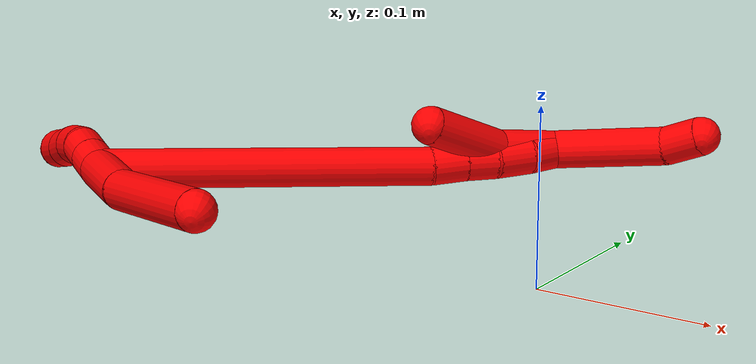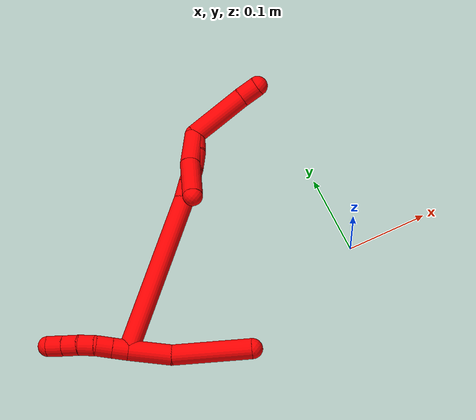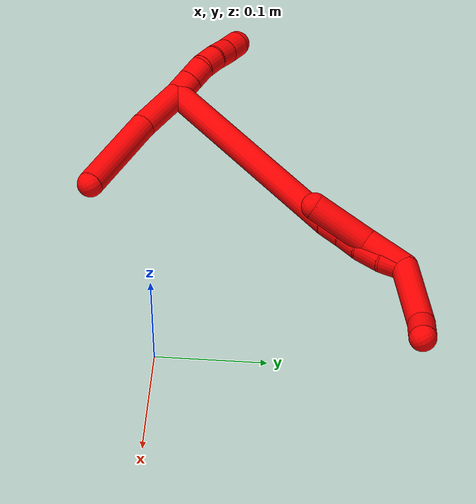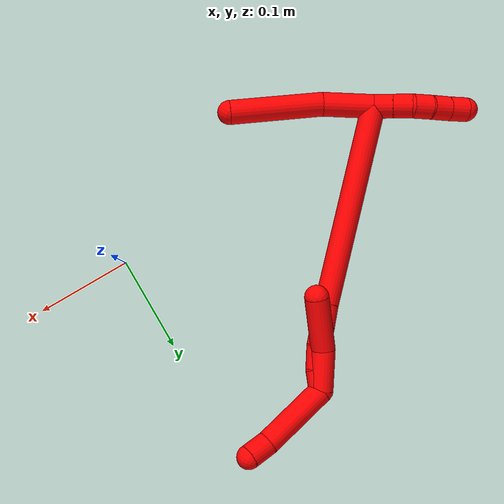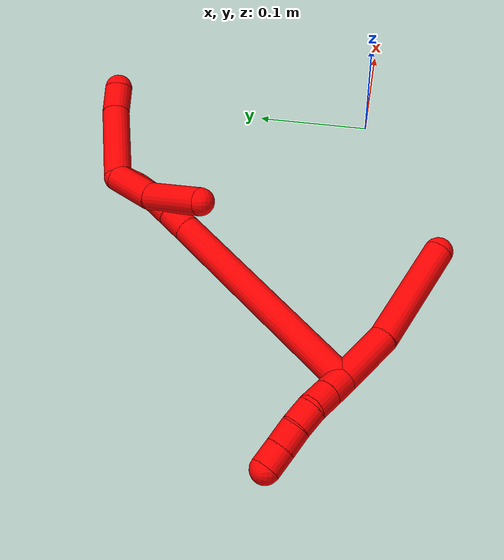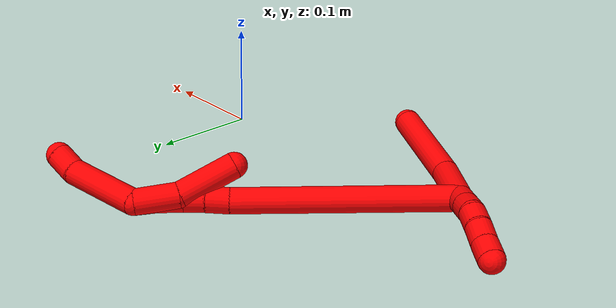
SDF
<sdf version="1.7">
 <world name="default">
  <model name="2">
   <static>0</static>
   <link name="2">
    <collision name="collision-cylinder-e_1_2_8">
     <pose>0.011661 0.008727 -0.022099 -2.7655 0.456244 -1.76838</pose>
     <geometry><cylinder><radius>0.0125</radius><length>0.052934</length></cylinder></geometry>
     <surface>
      <friction><ode><mu>1.16</mu><mu2>1.16</mu2><slip1>0</slip1><slip2>0</slip2></ode></friction>
      <contact><ode><kp>1e+06</kp><kd>1</kd><max_vel>0</max_vel><min_depth>0.001</min_depth></ode></contact>
     </surface>
    </collision>
    <visual name="visual-cylinder-e_1_2_8">
     <pose>0.011661 0.008727 -0.022099 -2.7655 0.456244 -1.76838</pose>
     <geometry><cylinder><radius>0.0125</radius><length>0.052934</length></cylinder></geometry>
     <material><ambient>1 0 0 1</ambient></material>
    </visual>
    <collision name="collision-cylinder-e_2_8_6">
     <pose>0.051147 0.037149 -0.078742 -2.62339 0.610565 -1.74297</pose>
     <geometry><cylinder><radius>0.0125</radius><length>0.097066</length></cylinder></geometry>
     <surface>
      <friction><ode><mu>1.16</mu><mu2>1.16</mu2><slip1>0</slip1><slip2>0</slip2></ode></friction>
      <contact><ode><kp>1e+06</kp><kd>1</kd><max_vel>0</max_vel><min_depth>0.001</min_depth></ode></contact>
     </surface>
    </collision>
    <visual name="visual-cylinder-e_2_8_6">
     <pose>0.051147 0.037149 -0.078742 -2.62339 0.610565 -1.74297</pose>
     <geometry><cylinder><radius>0.0125</radius><length>0.097066</length></cylinder></geometry>
     <material><ambient>1 0 0 1</ambient></material>
    </visual>
    <collision name="collision-cylinder-e_1_2_9">
     <pose>-0.003263 -0.004057 0.008538 0.443621 -0.3324 -0.075625</pose>
     <geometry><cylinder><radius>0.0125</radius><length>0.02</length></cylinder></geometry>
     <surface>
      <friction><ode><mu>1.16</mu><mu2>1.16</mu2><slip1>0</slip1><slip2>0</slip2></ode></friction>
      <contact><ode><kp>1e+06</kp><kd>1</kd><max_vel>0</max_vel><min_depth>0.001</min_depth></ode></contact>
     </surface>
    </collision>
    <visual name="visual-cylinder-e_1_2_9">
     <pose>-0.003263 -0.004057 0.008538 0.443621 -0.3324 -0.075625</pose>
     <geometry><cylinder><radius>0.0125</radius><length>0.02</length></cylinder></geometry>
     <material><ambient>1 0 0 1</ambient></material>
    </visual>
    <collision name="collision-cylinder-e_2_9_10">
     <pose>-0.009788 -0.012127 0.025635 0.438408 -0.332205 -0.074663</pose>
     <geometry><cylinder><radius>0.0125</radius><length>0.02</length></cylinder></geometry>
     <surface>
      <friction><ode><mu>1.16</mu><mu2>1.16</mu2><slip1>0</slip1><slip2>0</slip2></ode></friction>
      <contact><ode><kp>1e+06</kp><kd>1</kd><max_vel>0</max_vel><min_depth>0.001</min_depth></ode></contact>
     </surface>
    </collision>
    <visual name="visual-cylinder-e_2_9_10">
     <pose>-0.009788 -0.012127 0.025635 0.438408 -0.332205 -0.074663</pose>
     <geometry><cylinder><radius>0.0125</radius><length>0.02</length></cylinder></geometry>
     <material><ambient>1 0 0 1</ambient></material>
    </visual>
    <collision name="collision-cylinder-e_3_10_11">
     <pose>-0.018913 -0.01882 0.041838 0.337222 -0.626609 -0.110187</pose>
     <geometry><cylinder><radius>0.0125</radius><length>0.02</length></cylinder></geometry>
     <surface>
      <friction><ode><mu>1.16</mu><mu2>1.16</mu2><slip1>0</slip1><slip2>0</slip2></ode></friction>
      <contact><ode><kp>1e+06</kp><kd>1</kd><max_vel>0</max_vel><min_depth>0.001</min_depth></ode></contact>
     </surface>
    </collision>
    <visual name="visual-cylinder-e_3_10_11">
     <pose>-0.018913 -0.01882 0.041838 0.337222 -0.626609 -0.110187</pose>
     <geometry><cylinder><radius>0.0125</radius><length>0.02</length></cylinder></geometry>
     <material><ambient>1 0 0 1</ambient></material>
    </visual>
    <collision name="collision-cylinder-e_4_11_12">
     <pose>-0.031798 -0.023546 0.056302 0.291454 -0.778385 -0.120237</pose>
     <geometry><cylinder><radius>0.0125</radius><length>0.02</length></cylinder></geometry>
     <surface>
      <friction><ode><mu>1.16</mu><mu2>1.16</mu2><slip1>0</slip1><slip2>0</slip2></ode></friction>
      <contact><ode><kp>1e+06</kp><kd>1</kd><max_vel>0</max_vel><min_depth>0.001</min_depth></ode></contact>
     </surface>
    </collision>
    <visual name="visual-cylinder-e_4_11_12">
     <pose>-0.031798 -0.023546 0.056302 0.291454 -0.778385 -0.120237</pose>
     <geometry><cylinder><radius>0.0125</radius><length>0.02</length></cylinder></geometry>
     <material><ambient>1 0 0 1</ambient></material>
    </visual>
    <collision name="collision-cylinder-e_5_12_5">
     <pose>-0.04538 -0.028112 0.070236 0.340363 -0.715625 -0.128331</pose>
     <geometry><cylinder><radius>0.0125</radius><length>0.02</length></cylinder></geometry>
     <surface>
      <friction><ode><mu>1.16</mu><mu2>1.16</mu2><slip1>0</slip1><slip2>0</slip2></ode></friction>
      <contact><ode><kp>1e+06</kp><kd>1</kd><max_vel>0</max_vel><min_depth>0.001</min_depth></ode></contact>
     </surface>
    </collision>
    <visual name="visual-cylinder-e_5_12_5">
     <pose>-0.04538 -0.028112 0.070236 0.340363 -0.715625 -0.128331</pose>
     <geometry><cylinder><radius>0.0125</radius><length>0.02</length></cylinder></geometry>
     <material><ambient>1 0 0 1</ambient></material>
    </visual>
    <collision name="collision-cylinder-e_1_2_13">
     <pose>0.033182 0.095017 0.030866 -1.2567 0.320673 -0.233943</pose>
     <geometry><cylinder><radius>0.0125</radius><length>0.210542</length></cylinder></geometry>
     <surface>
      <friction><ode><mu>1.16</mu><mu2>1.16</mu2><slip1>0</slip1><slip2>0</slip2></ode></friction>
      <contact><ode><kp>1e+06</kp><kd>1</kd><max_vel>0</max_vel><min_depth>0.001</min_depth></ode></contact>
     </surface>
    </collision>
    <visual name="visual-cylinder-e_1_2_13">
     <pose>0.033182 0.095017 0.030866 -1.2567 0.320673 -0.233943</pose>
     <geometry><cylinder><radius>0.0125</radius><length>0.210542</length></cylinder></geometry>
     <material><ambient>1 0 0 1</ambient></material>
    </visual>
    <collision name="collision-cylinder-e_2_13_14">
     <pose>0.070758 0.199754 0.065977 -1.15902 0.392738 -0.258934</pose>
     <geometry><cylinder><radius>0.0125</radius><length>0.022961</length></cylinder></geometry>
     <surface>
      <friction><ode><mu>1.16</mu><mu2>1.16</mu2><slip1>0</slip1><slip2>0</slip2></ode></friction>
      <contact><ode><kp>1e+06</kp><kd>1</kd><max_vel>0</max_vel><min_depth>0.001</min_depth></ode></contact>
     </surface>
    </collision>
    <visual name="visual-cylinder-e_2_13_14">
     <pose>0.070758 0.199754 0.065977 -1.15902 0.392738 -0.258934</pose>
     <geometry><cylinder><radius>0.0125</radius><length>0.022961</length></cylinder></geometry>
     <material><ambient>1 0 0 1</ambient></material>
    </visual>
    <collision name="collision-cylinder-e_3_14_15">
     <pose>0.07869 0.218401 0.073711 -1.19822 0.353666 -0.242842</pose>
     <geometry><cylinder><radius>0.0125</radius><length>0.020432</length></cylinder></geometry>
     <surface>
      <friction><ode><mu>1.16</mu><mu2>1.16</mu2><slip1>0</slip1><slip2>0</slip2></ode></friction>
      <contact><ode><kp>1e+06</kp><kd>1</kd><max_vel>0</max_vel><min_depth>0.001</min_depth></ode></contact>
     </surface>
    </collision>
    <visual name="visual-cylinder-e_3_14_15">
     <pose>0.07869 0.218401 0.073711 -1.19822 0.353666 -0.242842</pose>
     <geometry><cylinder><radius>0.0125</radius><length>0.020432</length></cylinder></geometry>
     <material><ambient>1 0 0 1</ambient></material>
    </visual>
    <collision name="collision-cylinder-e_4_15_16">
     <pose>0.085954 0.237362 0.083005 -1.04636 0.31097 -0.180334</pose>
     <geometry><cylinder><radius>0.0125</radius><length>0.024354</length></cylinder></geometry>
     <surface>
      <friction><ode><mu>1.16</mu><mu2>1.16</mu2><slip1>0</slip1><slip2>0</slip2></ode></friction>
      <contact><ode><kp>1e+06</kp><kd>1</kd><max_vel>0</max_vel><min_depth>0.001</min_depth></ode></contact>
     </surface>
    </collision>
    <visual name="visual-cylinder-e_4_15_16">
     <pose>0.085954 0.237362 0.083005 -1.04636 0.31097 -0.180334</pose>
     <geometry><cylinder><radius>0.0125</radius><length>0.024354</length></cylinder></geometry>
     <material><ambient>1 0 0 1</ambient></material>
    </visual>
    <collision name="collision-cylinder-e_5_16_1">
     <pose>0.092074 0.255481 0.095646 -0.868816 0.222383 -0.103513</pose>
     <geometry><cylinder><radius>0.0125</radius><length>0.02171</length></cylinder></geometry>
     <surface>
      <friction><ode><mu>1.16</mu><mu2>1.16</mu2><slip1>0</slip1><slip2>0</slip2></ode></friction>
      <contact><ode><kp>1e+06</kp><kd>1</kd><max_vel>0</max_vel><min_depth>0.001</min_depth></ode></contact>
     </surface>
    </collision>
    <visual name="visual-cylinder-e_5_16_1">
     <pose>0.092074 0.255481 0.095646 -0.868816 0.222383 -0.103513</pose>
     <geometry><cylinder><radius>0.0125</radius><length>0.02171</length></cylinder></geometry>
     <material><ambient>1 0 0 1</ambient></material>
    </visual>
    <collision name="collision-cylinder-e_1_1_17">
     <pose>0.090619 0.244807 0.093229 2.02908 -0.181989 -0.291435</pose>
     <geometry><cylinder><radius>0.0125</radius><length>0.042536</length></cylinder></geometry>
     <surface>
      <friction><ode><mu>1.16</mu><mu2>1.16</mu2><slip1>0</slip1><slip2>0</slip2></ode></friction>
      <contact><ode><kp>1e+06</kp><kd>1</kd><max_vel>0</max_vel><min_depth>0.001</min_depth></ode></contact>
     </surface>
    </collision>
    <visual name="visual-cylinder-e_1_1_17">
     <pose>0.090619 0.244807 0.093229 2.02908 -0.181989 -0.291435</pose>
     <geometry><cylinder><radius>0.0125</radius><length>0.042536</length></cylinder></geometry>
     <material><ambient>1 0 0 1</ambient></material>
    </visual>
    <collision name="collision-cylinder-e_2_17_4">
     <pose>0.091371 0.201072 0.070539 2.06436 0.160816 0.268091</pose>
     <geometry><cylinder><radius>0.0125</radius><length>0.057464</length></cylinder></geometry>
     <surface>
      <friction><ode><mu>1.16</mu><mu2>1.16</mu2><slip1>0</slip1><slip2>0</slip2></ode></friction>
      <contact><ode><kp>1e+06</kp><kd>1</kd><max_vel>0</max_vel><min_depth>0.001</min_depth></ode></contact>
     </surface>
    </collision>
    <visual name="visual-cylinder-e_2_17_4">
     <pose>0.091371 0.201072 0.070539 2.06436 0.160816 0.268091</pose>
     <geometry><cylinder><radius>0.0125</radius><length>0.057464</length></cylinder></geometry>
     <material><ambient>1 0 0 1</ambient></material>
    </visual>
    <collision name="collision-cylinder-e_1_1_18">
     <pose>0.117208 0.292377 0.094703 -1.83453 0.651109 -0.830365</pose>
     <geometry><cylinder><radius>0.0125</radius><length>0.075038</length></cylinder></geometry>
     <surface>
      <friction><ode><mu>1.16</mu><mu2>1.16</mu2><slip1>0</slip1><slip2>0</slip2></ode></friction>
      <contact><ode><kp>1e+06</kp><kd>1</kd><max_vel>0</max_vel><min_depth>0.001</min_depth></ode></contact>
     </surface>
    </collision>
    <visual name="visual-cylinder-e_1_1_18">
     <pose>0.117208 0.292377 0.094703 -1.83453 0.651109 -0.830365</pose>
     <geometry><cylinder><radius>0.0125</radius><length>0.075038</length></cylinder></geometry>
     <material><ambient>1 0 0 1</ambient></material>
    </visual>
    <collision name="collision-cylinder-e_2_18_3">
     <pose>0.149925 0.327961 0.083709 -2.01391 0.926457 -1.33712</pose>
     <geometry><cylinder><radius>0.0125</radius><length>0.024962</length></cylinder></geometry>
     <surface>
      <friction><ode><mu>1.16</mu><mu2>1.16</mu2><slip1>0</slip1><slip2>0</slip2></ode></friction>
      <contact><ode><kp>1e+06</kp><kd>1</kd><max_vel>0</max_vel><min_depth>0.001</min_depth></ode></contact>
     </surface>
    </collision>
    <visual name="visual-cylinder-e_2_18_3">
     <pose>0.149925 0.327961 0.083709 -2.01391 0.926457 -1.33712</pose>
     <geometry><cylinder><radius>0.0125</radius><length>0.024962</length></cylinder></geometry>
     <material><ambient>1 0 0 1</ambient></material>
    </visual>
    <collision name="collision-sphere-3">
     <pose>0.159904 0.334734 0.080495 0 -0 0</pose>
     <geometry><sphere><radius>0.0125</radius></sphere></geometry>
     <surface>
      <friction><ode><mu>1.16</mu><mu2>1.16</mu2><slip1>0</slip1><slip2>0</slip2></ode></friction>
      <contact><ode><kp>1e+06</kp><kd>1</kd><max_vel>0</max_vel><min_depth>0.001</min_depth></ode></contact>
     </surface>
    </collision>
    <visual name="visual-sphere-3">
     <pose>0.159904 0.334734 0.080495 0 -0 0</pose>
     <geometry><sphere><radius>0.0125</radius></sphere></geometry>
     <material><ambient>1 0 0 1</ambient></material>
    </visual>
    <collision name="collision-sphere-11">
     <pose>-0.024777 -0.0215 0.049482 0 -0 0</pose>
     <geometry><sphere><radius>0.0125</radius></sphere></geometry>
     <surface>
      <friction><ode><mu>1.16</mu><mu2>1.16</mu2><slip1>0</slip1><slip2>0</slip2></ode></friction>
      <contact><ode><kp>1e+06</kp><kd>1</kd><max_vel>0</max_vel><min_depth>0.001</min_depth></ode></contact>
     </surface>
    </collision>
    <visual name="visual-sphere-11">
     <pose>-0.024777 -0.0215 0.049482 0 -0 0</pose>
     <geometry><sphere><radius>0.0125</radius></sphere></geometry>
     <material><ambient>1 0 0 1</ambient></material>
    </visual>
    <collision name="collision-sphere-10">
     <pose>-0.013049 -0.01614 0.034194 0 -0 0</pose>
     <geometry><sphere><radius>0.0125</radius></sphere></geometry>
     <surface>
      <friction><ode><mu>1.16</mu><mu2>1.16</mu2><slip1>0</slip1><slip2>0</slip2></ode></friction>
      <contact><ode><kp>1e+06</kp><kd>1</kd><max_vel>0</max_vel><min_depth>0.001</min_depth></ode></contact>
     </surface>
    </collision>
    <visual name="visual-sphere-10">
     <pose>-0.013049 -0.01614 0.034194 0 -0 0</pose>
     <geometry><sphere><radius>0.0125</radius></sphere></geometry>
     <material><ambient>1 0 0 1</ambient></material>
    </visual>
    <collision name="collision-sphere-6">
     <pose>0.078973 0.056846 -0.113285 0 -0 0</pose>
     <geometry><sphere><radius>0.0125</radius></sphere></geometry>
     <surface>
      <friction><ode><mu>1.16</mu><mu2>1.16</mu2><slip1>0</slip1><slip2>0</slip2></ode></friction>
      <contact><ode><kp>1e+06</kp><kd>1</kd><max_vel>0</max_vel><min_depth>0.001</min_depth></ode></contact>
     </surface>
    </collision>
    <visual name="visual-sphere-6">
     <pose>0.078973 0.056846 -0.113285 0 -0 0</pose>
     <geometry><sphere><radius>0.0125</radius></sphere></geometry>
     <material><ambient>1 0 0 1</ambient></material>
    </visual>
    <collision name="collision-sphere-9">
     <pose>-0.006526 -0.008114 0.017075 0 -0 0</pose>
     <geometry><sphere><radius>0.0125</radius></sphere></geometry>
     <surface>
      <friction><ode><mu>1.16</mu><mu2>1.16</mu2><slip1>0</slip1><slip2>0</slip2></ode></friction>
      <contact><ode><kp>1e+06</kp><kd>1</kd><max_vel>0</max_vel><min_depth>0.001</min_depth></ode></contact>
     </surface>
    </collision>
    <visual name="visual-sphere-9">
     <pose>-0.006526 -0.008114 0.017075 0 -0 0</pose>
     <geometry><sphere><radius>0.0125</radius></sphere></geometry>
     <material><ambient>1 0 0 1</ambient></material>
    </visual>
    <collision name="collision-sphere-2">
     <geometry><sphere><radius>0.0125</radius></sphere></geometry>
     <surface>
      <friction><ode><mu>1.16</mu><mu2>1.16</mu2><slip1>0</slip1><slip2>0</slip2></ode></friction>
      <contact><ode><kp>1e+06</kp><kd>1</kd><max_vel>0</max_vel><min_depth>0.001</min_depth></ode></contact>
     </surface>
    </collision>
    <visual name="visual-sphere-2">
     <geometry><sphere><radius>0.0125</radius></sphere></geometry>
     <material><ambient>1 0 0 1</ambient></material>
    </visual>
    <collision name="collision-sphere-8">
     <pose>0.023322 0.017453 -0.044198 0 -0 0</pose>
     <geometry><sphere><radius>0.0125</radius></sphere></geometry>
     <surface>
      <friction><ode><mu>1.16</mu><mu2>1.16</mu2><slip1>0</slip1><slip2>0</slip2></ode></friction>
      <contact><ode><kp>1e+06</kp><kd>1</kd><max_vel>0</max_vel><min_depth>0.001</min_depth></ode></contact>
     </surface>
    </collision>
    <visual name="visual-sphere-8">
     <pose>0.023322 0.017453 -0.044198 0 -0 0</pose>
     <geometry><sphere><radius>0.0125</radius></sphere></geometry>
     <material><ambient>1 0 0 1</ambient></material>
    </visual>
    <collision name="collision-sphere-12">
     <pose>-0.038819 -0.025592 0.063122 0 -0 0</pose>
     <geometry><sphere><radius>0.0125</radius></sphere></geometry>
     <surface>
      <friction><ode><mu>1.16</mu><mu2>1.16</mu2><slip1>0</slip1><slip2>0</slip2></ode></friction>
      <contact><ode><kp>1e+06</kp><kd>1</kd><max_vel>0</max_vel><min_depth>0.001</min_depth></ode></contact>
     </surface>
    </collision>
    <visual name="visual-sphere-12">
     <pose>-0.038819 -0.025592 0.063122 0 -0 0</pose>
     <geometry><sphere><radius>0.0125</radius></sphere></geometry>
     <material><ambient>1 0 0 1</ambient></material>
    </visual>
    <collision name="collision-sphere-5">
     <pose>-0.051941 -0.030631 0.07735 0 -0 0</pose>
     <geometry><sphere><radius>0.0125</radius></sphere></geometry>
     <surface>
      <friction><ode><mu>1.16</mu><mu2>1.16</mu2><slip1>0</slip1><slip2>0</slip2></ode></friction>
      <contact><ode><kp>1e+06</kp><kd>1</kd><max_vel>0</max_vel><min_depth>0.001</min_depth></ode></contact>
     </surface>
    </collision>
    <visual name="visual-sphere-5">
     <pose>-0.051941 -0.030631 0.07735 0 -0 0</pose>
     <geometry><sphere><radius>0.0125</radius></sphere></geometry>
     <material><ambient>1 0 0 1</ambient></material>
    </visual>
    <collision name="collision-sphere-13">
     <pose>0.066364 0.190034 0.061732 0 -0 0</pose>
     <geometry><sphere><radius>0.0125</radius></sphere></geometry>
     <surface>
      <friction><ode><mu>1.16</mu><mu2>1.16</mu2><slip1>0</slip1><slip2>0</slip2></ode></friction>
      <contact><ode><kp>1e+06</kp><kd>1</kd><max_vel>0</max_vel><min_depth>0.001</min_depth></ode></contact>
     </surface>
    </collision>
    <visual name="visual-sphere-13">
     <pose>0.066364 0.190034 0.061732 0 -0 0</pose>
     <geometry><sphere><radius>0.0125</radius></sphere></geometry>
     <material><ambient>1 0 0 1</ambient></material>
    </visual>
    <collision name="collision-sphere-14">
     <pose>0.075152 0.209474 0.070222 0 -0 0</pose>
     <geometry><sphere><radius>0.0125</radius></sphere></geometry>
     <surface>
      <friction><ode><mu>1.16</mu><mu2>1.16</mu2><slip1>0</slip1><slip2>0</slip2></ode></friction>
      <contact><ode><kp>1e+06</kp><kd>1</kd><max_vel>0</max_vel><min_depth>0.001</min_depth></ode></contact>
     </surface>
    </collision>
    <visual name="visual-sphere-14">
     <pose>0.075152 0.209474 0.070222 0 -0 0</pose>
     <geometry><sphere><radius>0.0125</radius></sphere></geometry>
     <material><ambient>1 0 0 1</ambient></material>
    </visual>
    <collision name="collision-sphere-15">
     <pose>0.082228 0.227327 0.0772 0 -0 0</pose>
     <geometry><sphere><radius>0.0125</radius></sphere></geometry>
     <surface>
      <friction><ode><mu>1.16</mu><mu2>1.16</mu2><slip1>0</slip1><slip2>0</slip2></ode></friction>
      <contact><ode><kp>1e+06</kp><kd>1</kd><max_vel>0</max_vel><min_depth>0.001</min_depth></ode></contact>
     </surface>
    </collision>
    <visual name="visual-sphere-15">
     <pose>0.082228 0.227327 0.0772 0 -0 0</pose>
     <geometry><sphere><radius>0.0125</radius></sphere></geometry>
     <material><ambient>1 0 0 1</ambient></material>
    </visual>
    <collision name="collision-sphere-16">
     <pose>0.08968 0.247397 0.08881 0 -0 0</pose>
     <geometry><sphere><radius>0.0125</radius></sphere></geometry>
     <surface>
      <friction><ode><mu>1.16</mu><mu2>1.16</mu2><slip1>0</slip1><slip2>0</slip2></ode></friction>
      <contact><ode><kp>1e+06</kp><kd>1</kd><max_vel>0</max_vel><min_depth>0.001</min_depth></ode></contact>
     </surface>
    </collision>
    <visual name="visual-sphere-16">
     <pose>0.08968 0.247397 0.08881 0 -0 0</pose>
     <geometry><sphere><radius>0.0125</radius></sphere></geometry>
     <material><ambient>1 0 0 1</ambient></material>
    </visual>
    <collision name="collision-sphere-1">
     <pose>0.094468 0.263566 0.102483 0 -0 0</pose>
     <geometry><sphere><radius>0.0125</radius></sphere></geometry>
     <surface>
      <friction><ode><mu>1.16</mu><mu2>1.16</mu2><slip1>0</slip1><slip2>0</slip2></ode></friction>
      <contact><ode><kp>1e+06</kp><kd>1</kd><max_vel>0</max_vel><min_depth>0.001</min_depth></ode></contact>
     </surface>
    </collision>
    <visual name="visual-sphere-1">
     <pose>0.094468 0.263566 0.102483 0 -0 0</pose>
     <geometry><sphere><radius>0.0125</radius></sphere></geometry>
     <material><ambient>1 0 0 1</ambient></material>
    </visual>
    <collision name="collision-sphere-18">
     <pose>0.139947 0.321188 0.086924 0 -0 0</pose>
     <geometry><sphere><radius>0.0125</radius></sphere></geometry>
     <surface>
      <friction><ode><mu>1.16</mu><mu2>1.16</mu2><slip1>0</slip1><slip2>0</slip2></ode></friction>
      <contact><ode><kp>1e+06</kp><kd>1</kd><max_vel>0</max_vel><min_depth>0.001</min_depth></ode></contact>
     </surface>
    </collision>
    <visual name="visual-sphere-18">
     <pose>0.139947 0.321188 0.086924 0 -0 0</pose>
     <geometry><sphere><radius>0.0125</radius></sphere></geometry>
     <material><ambient>1 0 0 1</ambient></material>
    </visual>
    <collision name="collision-sphere-17">
     <pose>0.08677 0.226048 0.083976 0 -0 0</pose>
     <geometry><sphere><radius>0.0125</radius></sphere></geometry>
     <surface>
      <friction><ode><mu>1.16</mu><mu2>1.16</mu2><slip1>0</slip1><slip2>0</slip2></ode></friction>
      <contact><ode><kp>1e+06</kp><kd>1</kd><max_vel>0</max_vel><min_depth>0.001</min_depth></ode></contact>
     </surface>
    </collision>
    <visual name="visual-sphere-17">
     <pose>0.08677 0.226048 0.083976 0 -0 0</pose>
     <geometry><sphere><radius>0.0125</radius></sphere></geometry>
     <material><ambient>1 0 0 1</ambient></material>
    </visual>
    <collision name="collision-sphere-4">
     <pose>0.095971 0.176096 0.057102 0 -0 0</pose>
     <geometry><sphere><radius>0.0125</radius></sphere></geometry>
     <surface>
      <friction><ode><mu>1.16</mu><mu2>1.16</mu2><slip1>0</slip1><slip2>0</slip2></ode></friction>
      <contact><ode><kp>1e+06</kp><kd>1</kd><max_vel>0</max_vel><min_depth>0.001</min_depth></ode></contact>
     </surface>
    </collision>
    <visual name="visual-sphere-4">
     <pose>0.095971 0.176096 0.057102 0 -0 0</pose>
     <geometry><sphere><radius>0.0125</radius></sphere></geometry>
     <material><ambient>1 0 0 1</ambient></material>
    </visual>
    <inertial>
     <pose>0.05247 0.126413 0.034761 0 -0 0</pose>
     <mass>0.75</mass>
     <inertia>
      <ixx>0.000511</ixx>
      <ixy>0</ixy>
      <ixz>0</ixz>
      <iyy>8.9e-05</iyy>
      <iyz>0</iyz>
      <izz>-0.001083</izz>
     </inertia>
    </inertial>
   </link>
   <pose>-0.303784 -0.008677 0.021895 -1.01505 -1.02685 -0.006848</pose>
  </model>
 </world>
</sdf>
